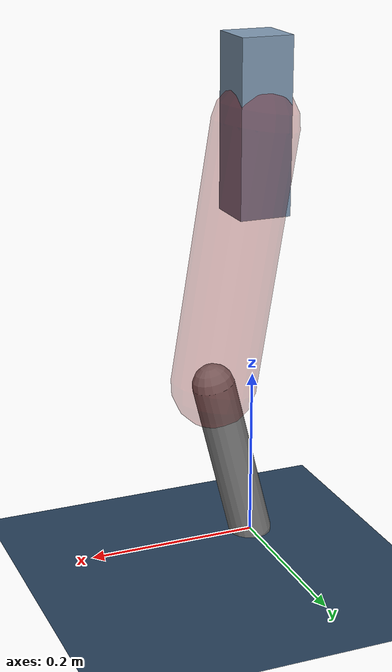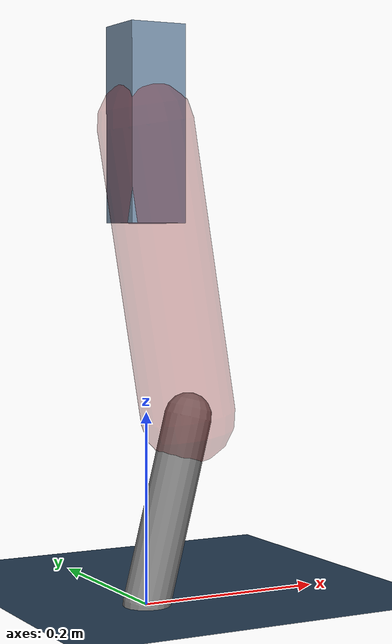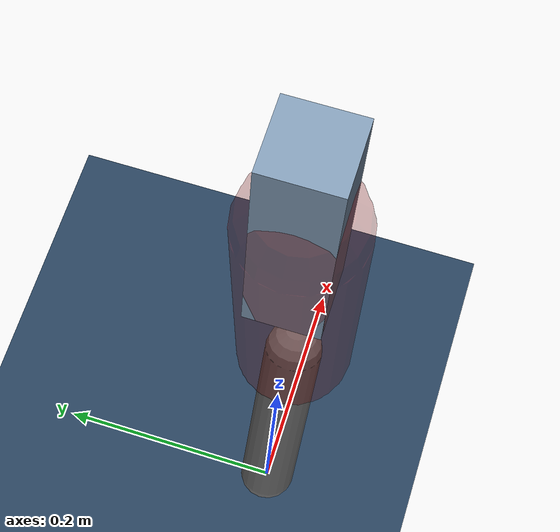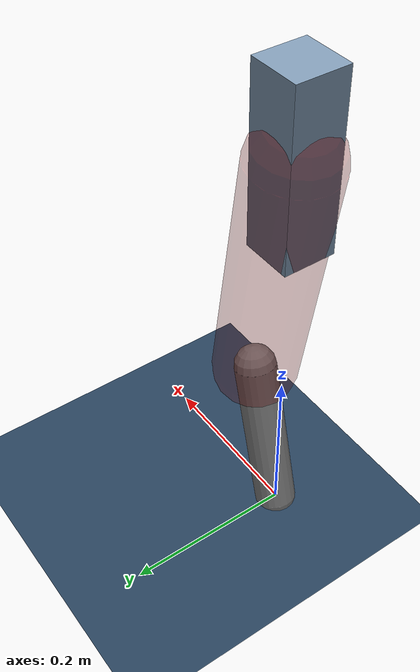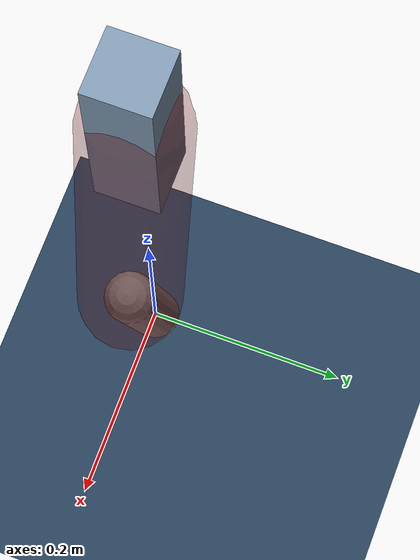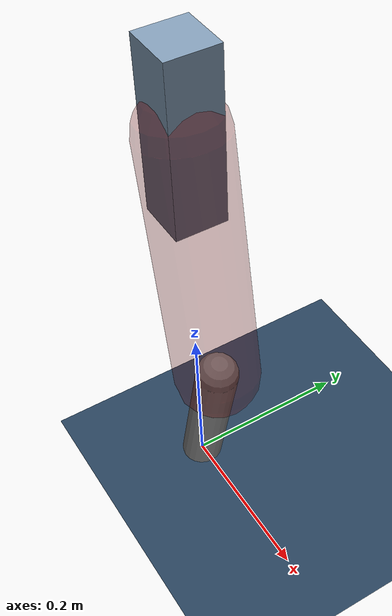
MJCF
<mujoco model="Hopper2D">
	<compiler inertiafromgeom="true" angle="radian" />
	<option timestep="0.001" integrator="implicit" cone="elliptic" solver="Newton" tolerance="1e-10" />

	<default>
		<geom contype="1" conaffinity="1" condim="3" friction="2 0.005 0.0001" solref="0.005 1" />
		<joint limited="true" damping="0.1" />
	</default>

	<asset>
		<texture name="skybox" type="skybox" builtin="gradient" rgb1=".4 .6 .8" rgb2="0 0 0" width="800" height="800" />
		<texture name="grid" type="2d" builtin="checker" rgb1=".1 .2 .3" rgb2=".2 .3 .4" width="300" height="300" mark="edge" markrgb=".2 .3 .4" />
		<material name="ground" texture="grid" texrepeat="1 1" texuniform="true" reflectance="0.1" />
		<material name="leg" rgba="0.5 0.6 0.7 1" />
	</asset>

	<worldbody>

		<geom name="floor" type="plane" size="5 5 0.25" material="ground" />

		<light directional="false" diffuse="0.8 0.8 0.8" specular="0.3 0.3 0.3" pos="0 0 2" dir="0 0 -1" />
		<light mode="targetbodycom" target="base" directional="false" diffuse="0.8 0.8 0.8" specular="0.3 0.3 0.3" pos="0 0 2" dir="0 0 -1" />

		<camera name="fixed" pos="0 -2 1" xyaxes="1 0 0 0 0 1" />
		<camera name="tracking" mode="trackcom" pos="0 -3 1" />

		<body name="root" pos="0 0 0.4941693658825025">
			<joint name="slide_x" type="slide" axis="1 0 0" range="-100 100" />
			<joint name="slide_z" type="slide" axis="0 0 1" range="0 10" />

			<body name="base" pos="0 0 0">
				<geom name="torso" type="box" size="0.03 0.03 0.1" mass="1.5899999999999999" material="leg" />

				<body name="link1" pos="0 0 0" euler="0 1.4098301485055065 0">
					<joint type="hinge" axis="0 -1 0" pos="0 0 0" name="hinge1" limited="true" range="-3.14 3.14" stiffness="0" damping="0.1" />
					<geom name="thigh" type="capsule" fromto="0 0 0 0.3045910863583392 0 0" size="0.05" rgba="0.5 0 0 0.3" mass="1.0011959331675158" />

					<body name="link2" pos="0.3045910863583392 0 0" euler="0 0.4080762441052582 0">
						<joint type="hinge" axis="0 -1 0" pos="0 0 0" name="hinge2" limited="true" range="-3.14 3.14" stiffness="0" damping="0.1" />
						<geom name="shank" type="capsule" fromto="0 0 0 0.19957827952416327 0 0" size="0.025" mass="0.4005626236193306" />

					</body>
				</body>
			</body>
		</body>
	</worldbody>

	<actuator>
		<motor name="torque1" joint="hinge1" ctrlrange="-40.25540180057846 40.25540180057846" ctrllimited="true" gear="1" />
		<motor name="torque2" joint="hinge2" ctrlrange="-51.89941495508107 51.89941495508107" ctrllimited="true" gear="1" />
	</actuator>
</mujoco>
